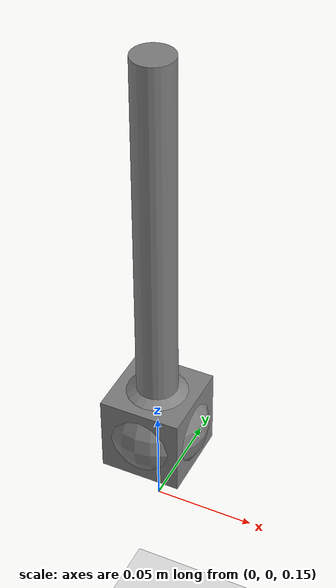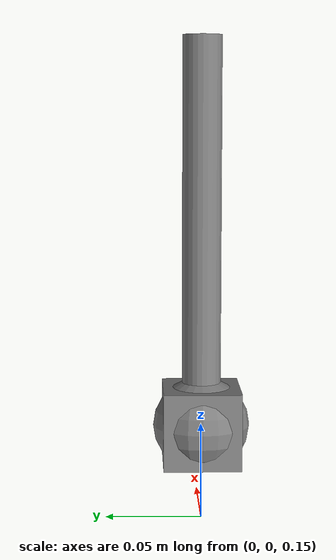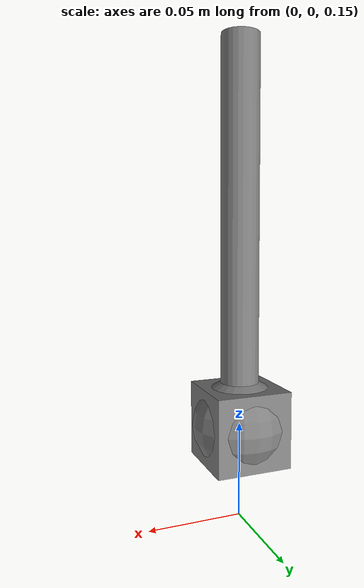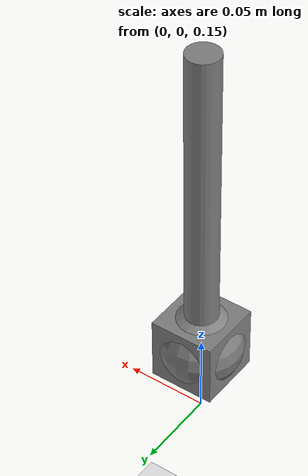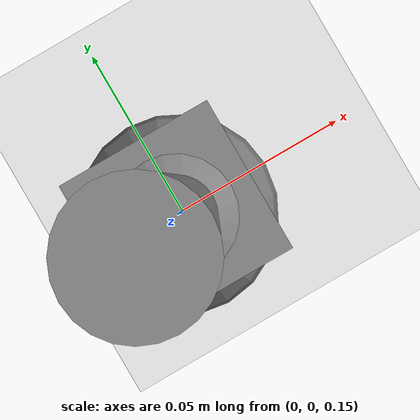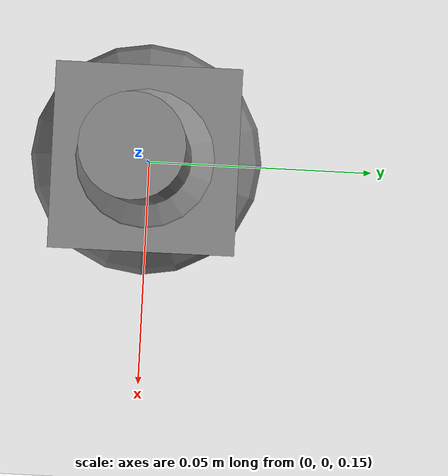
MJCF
<mujoco>
	<option gravity="0 0 -9.8" viscosity="0.1" wind="0 0 0" />
  <worldbody>
    <light diffuse=".5 .5 .5" pos="0 0 7" dir="0 0 -1"/>
    <geom type="plane" size="1 1 0.1" rgba=".9 0.9 0.9 1"/>
    <body pos="0 0 0.3" euler="0 0 0">
      <body>
        <geom type="cylinder" size="0.01 0.1" pos="0 0 0" mass="0.05"/>
        <geom type="box" size="0.02 0.02 0.02" pos="0 0 -0.1" mass="1"/>
      </body>
      <joint name="main_hinge" type="hinge" pos="0 0 0.1" axis="0 1 0" damping="0.1" range="-360 360" limited="true" />
      <site name="end_of_pole" pos="0 0 -0.1" size="0.025"/>
    </body>
  </worldbody>
  <sensor>
    <jointvel joint="main_hinge" />
    <framepos objtype="site" objname="end_of_pole"/>
  </sensor>
  <actuator>
    <motor joint="main_hinge" ctrllimited="true" ctrlrange="-10 10"  />
  </actuator>
</mujoco>
